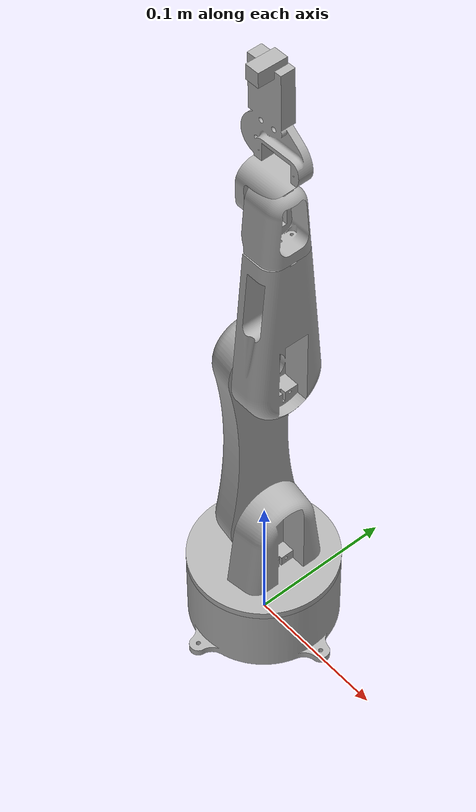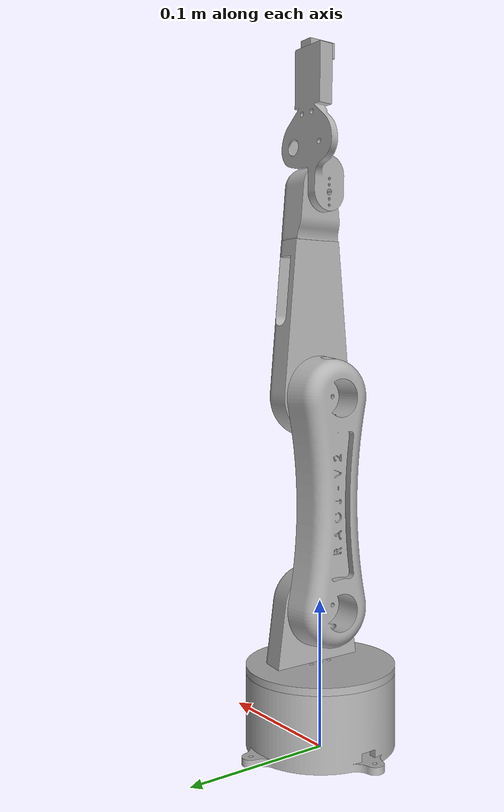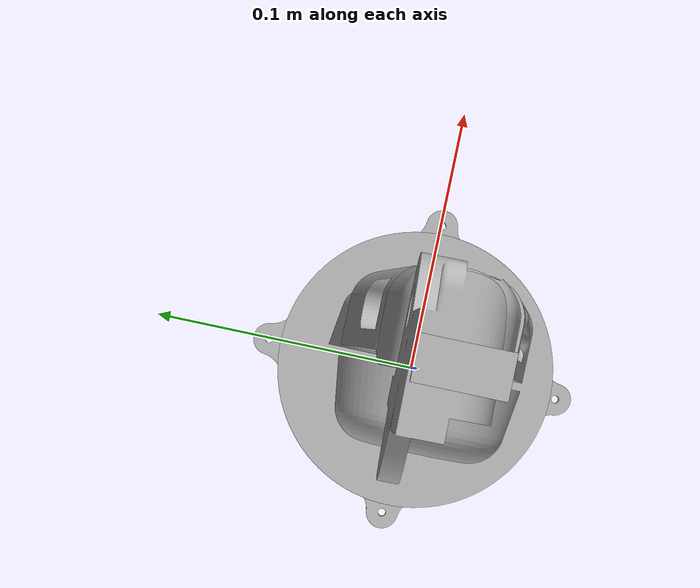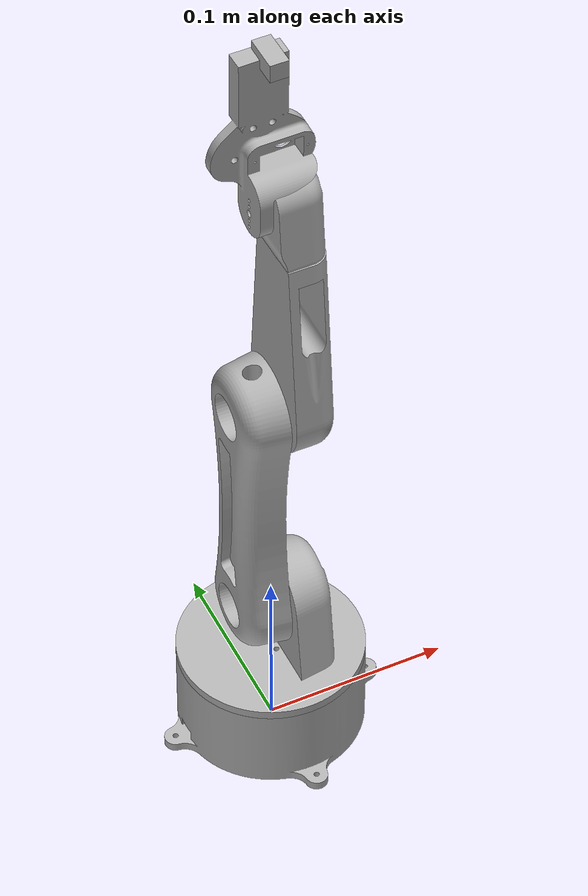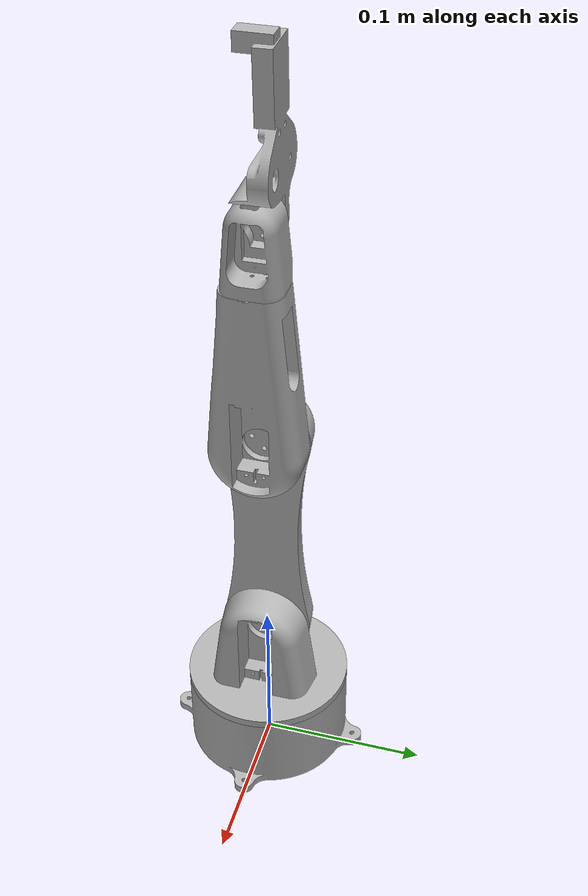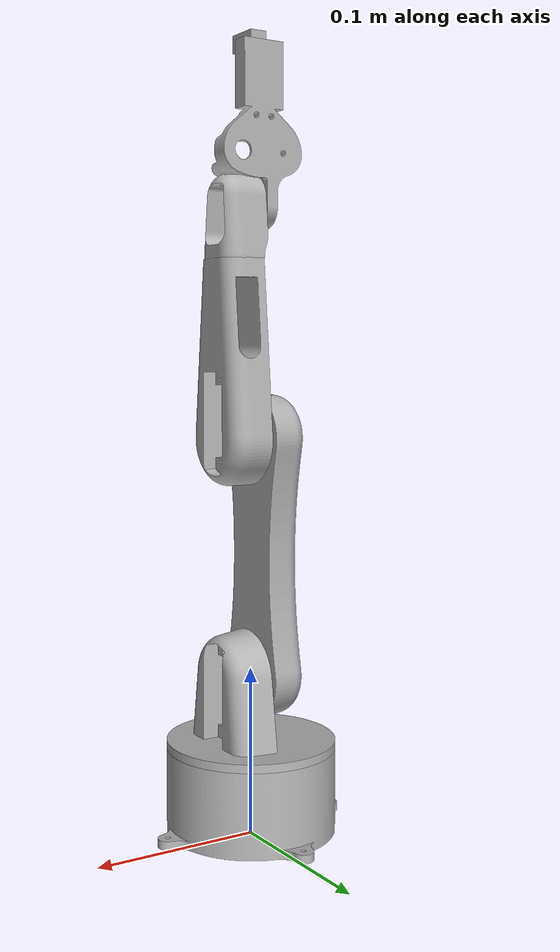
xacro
<?xml version="1.0"?>
<robot xmlns:xacro="http://www.ros.org/wiki/xacro" name="five_dof_robot_arm">
    <xacro:arg name="initial_positions_file" default="initial_positions.yaml" />

    <!-- Import five_dof_robot_arm urdf file -->
    <xacro:include filename="$(find five_dof_robot_arm_description)/urdf/five_dof_robot_arm.xacro" />

    <!-- Import control_xacro -->
    <xacro:include filename="five_dof_robot_arm.ros2_control.xacro" />

    <xacro:five_dof_robot_arm_ros2_control name="FakeSystem" initial_positions_file="$(arg initial_positions_file)"/>

</robot>

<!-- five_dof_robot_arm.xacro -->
<robot name="five_dof_robot_arm" xmlns:xacro="http://www.ros.org/wiki/xacro">

<xacro:include filename="$(find five_dof_robot_arm_description)/urdf/materials.xacro" />
<xacro:include filename="$(find five_dof_robot_arm_description)/urdf/five_dof_robot_arm.trans" />
<xacro:include filename="$(find five_dof_robot_arm_description)/urdf/five_dof_robot_arm.gazebo" />
<link name="base_link">
  <inertial>
    <origin xyz="0.00039944618987229174 -0.00022679502558283884 0.02557811537278175" rpy="0 0 0"/>
    <mass value="0.7233661769499682"/>
    <inertia ixx="0.000878" iyy="0.000958" izz="0.001522" ixy="0.0" iyz="-0.0" ixz="-1e-05"/>
  </inertial>
  <visual>
    <origin xyz="0 0 0" rpy="0 0 0"/>
    <geometry>
      <mesh filename="file://$(find five_dof_robot_arm_description)/meshes/base_link.stl" scale="0.001 0.001 0.001"/>
    </geometry>
    <material name="silver"/>
  </visual>
  <collision>
    <origin xyz="0 0 0" rpy="0 0 0"/>
    <geometry>
      <mesh filename="file://$(find five_dof_robot_arm_description)/meshes/base_link.stl" scale="0.001 0.001 0.001"/>
    </geometry>
  </collision>
</link>

<link name="rotate_link_1">
  <inertial>
    <origin xyz="0.0070578292154109806 -2.6117230101140867e-05 0.01942324197942242" rpy="0 0 0"/>
    <mass value="0.7043175850391777"/>
    <inertia ixx="0.000607" iyy="0.000525" izz="0.000555" ixy="-0.0" iyz="0.0" ixz="-6.3e-05"/>
  </inertial>
  <visual>
    <origin xyz="0.00049 0.000227 -0.053152" rpy="0 0 0"/>
    <geometry>
      <mesh filename="file://$(find five_dof_robot_arm_description)/meshes/rotate_link_1.stl" scale="0.001 0.001 0.001"/>
    </geometry>
    <material name="silver"/>
  </visual>
  <collision>
    <origin xyz="0.00049 0.000227 -0.053152" rpy="0 0 0"/>
    <geometry>
      <mesh filename="file://$(find five_dof_robot_arm_description)/meshes/rotate_link_1.stl" scale="0.001 0.001 0.001"/>
    </geometry>
  </collision>
</link>

<link name="link1_1">
  <inertial>
    <origin xyz="-0.008147667775626987 -0.0010986954924051464 0.07000434191025155" rpy="0 0 0"/>
    <mass value="1.0831804124518591"/>
    <inertia ixx="0.003389" iyy="0.003241" izz="0.000242" ixy="-1e-06" iyz="-5e-06" ixz="0.0"/>
  </inertial>
  <visual>
    <origin xyz="0.00265 -0.001031 -0.096702" rpy="0 0 0"/>
    <geometry>
      <mesh filename="file://$(find five_dof_robot_arm_description)/meshes/link1_1.stl" scale="0.001 0.001 0.001"/>
    </geometry>
    <material name="silver"/>
  </visual>
  <collision>
    <origin xyz="0.00265 -0.001031 -0.096702" rpy="0 0 0"/>
    <geometry>
      <mesh filename="file://$(find five_dof_robot_arm_description)/meshes/link1_1.stl" scale="0.001 0.001 0.001"/>
    </geometry>
  </collision>
</link>

<link name="end_effector">
  <inertial>
    <origin xyz="-0.0018 -0.13 0.3" rpy = "0 0 0"/>
    <mass value="0.1"/>
    <inertia ixx="0.001" iyy="0.001" izz="0.001" ixy="0.001" iyz="0.001" ixz="0.001"/>
  </inertial>
  <visual>
    <origin xyz="0.0003 -0.0002 -0.31" rpy="0 0 0"/>
    <geometry>
      <box size="0.01 0.02 0.01"/>
    </geometry>
    <material name="silver"/>
  </visual>
  <collision>
    <origin xyz="0.0003 -0.0002 -0.31" rpy = "0 0 0"/>
    <geometry>
      <box size="0.01 0.02 0.01"/>
    </geometry>
  </collision>
</link>

<link name="gripper_base_1">
  <inertial>
    <origin xyz="-0.0017949480748237856 -0.12033518453855054 0.2750017785923606" rpy="0 0 0"/>
    <mass value="0.1980883158048346"/>
    <inertia ixx="0.000163" iyy="0.000177" izz="2.5e-05" ixy="-0.0" iyz="-1e-05" ixz="-4e-06"/>
  </inertial>
  <visual>
    <origin xyz="-0.000226 -0.000703 -0.37182" rpy="0 0 0"/>
    <geometry>
      <mesh filename="file://$(find five_dof_robot_arm_description)/meshes/gripper_base_1.stl" scale="0.001 0.001 0.001"/>
    </geometry>
    <material name="silver"/>
  </visual>
  <collision>
    <origin xyz="-0.000226 -0.000703 -0.37182" rpy="0 0 0"/>
    <geometry>
      <mesh filename="file://$(find five_dof_robot_arm_description)/meshes/gripper_base_1.stl" scale="0.001 0.001 0.001"/>
    </geometry>
  </collision>
</link>

<link name="link3_1">
  <inertial>
    <origin xyz="-0.00423661183439995 0.0055092783070706235 0.019646810907749834" rpy="0 0 0"/>
    <mass value="0.16054869925024692"/>
    <inertia ixx="4.8e-05" iyy="4e-05" izz="2.3e-05" ixy="0.0" iyz="-0.0" ixz="3e-06"/>
  </inertial>
  <visual>
    <origin xyz="-0.013842 0.005101 -0.351704" rpy="0 0 0"/>
    <geometry>
      <mesh filename="file://$(find five_dof_robot_arm_description)/meshes/link3_1.stl" scale="0.001 0.001 0.001"/>
    </geometry>
    <material name="silver"/>
  </visual>
  <collision>
    <origin xyz="-0.013842 0.005101 -0.351704" rpy="0 0 0"/>
    <geometry>
      <mesh filename="file://$(find five_dof_robot_arm_description)/meshes/link3_1.stl" scale="0.001 0.001 0.001"/>
    </geometry>
  </collision>
</link>

<link name="link2_1">
  <inertial>
    <origin xyz="0.012972297674821031 -0.06088047213397274 0.045775837477048026" rpy="0 0 0"/>
    <mass value="0.6306313073359033"/>
    <inertia ixx="0.00092" iyy="0.00082" izz="0.000167" ixy="-0.0" iyz="-2e-06" ixz="-6e-06"/>
  </inertial>
  <visual>
    <origin xyz="0.000382 -0.000958 -0.234625" rpy="0 0 0"/>
    <geometry>
      <mesh filename="file://$(find five_dof_robot_arm_description)/meshes/link2_1.stl" scale="0.001 0.001 0.001"/>
    </geometry>
    <material name="silver"/>
  </visual>
  <collision>
    <origin xyz="0.000382 -0.060958 -0.234625" rpy="0 0 0"/>
    <geometry>
      <mesh filename="file://$(find five_dof_robot_arm_description)/meshes/link2_1.stl" scale="0.001 0.001 0.001"/>
    </geometry>
  </collision>
</link>

<joint name="Revolute 18" type="revolute">
  <origin xyz="-0.00049 -0.000227 0.053152" rpy="0 0 0"/>
  <parent link="base_link"/>
  <child link="rotate_link_1"/>
  <axis xyz="0.0 -0.0 1.0"/>
  <limit upper="6.283185" lower="0.0" effort="100" velocity="100"/>
</joint>

<joint name="Revolute 19" type="revolute">
  <origin xyz="-0.00216 0.001258 0.04355" rpy="0 0 0"/>
  <parent link="rotate_link_1"/>
  <child link="link1_1"/>
  <axis xyz="0.999993 -0.003728 -0.0"/>
  <limit upper="1.570796" lower="-1.570796" effort="100" velocity="100"/>
</joint>

<joint name="Revolute 21" type="revolute">
  <origin xyz="-0.013616 0.005804 0.020116" rpy="0 0 0"/>
  <parent link="link3_1"/>
  <child link="gripper_base_1"/>
  <axis xyz="0.999892 0.014705 -7e-06"/>
  <limit upper="1.570796" lower="-1.570796" effort="100" velocity="100"/>
</joint>

<joint name="Revolute 34" type="revolute">
  <origin xyz="0.014224 -0.006059 0.117079" rpy="0 0 0"/>
  <parent link="link2_1"/>
  <child link="link3_1"/>
  <axis xyz="1e-06 0.000375 1.0"/>
  <limit upper="6.283185" lower="0.0" effort="100" velocity="100"/>
</joint>

<joint name="Revolute 35" type="revolute">
  <origin xyz="0.002268 -0.000073 0.137923" rpy="0 0 0"/>
  <parent link="link1_1"/>
  <child link="link2_1"/>
  <axis xyz="0.999993 -0.003728 -0.0"/>
  <limit upper="1.570796" lower="-1.570796" effort="100" velocity="100"/>
</joint>

<joint name="end_effector_joint" type="fixed">
  <origin xyz="0.001 -0.0001 0.40" rpy="0 0 0"/>
  <parent link="gripper_base_1"/>
  <child link="end_effector"/>
</joint>

</robot>

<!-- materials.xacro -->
<robot name="five_dof_robot_arm" xmlns:xacro="http://www.ros.org/wiki/xacro" >

<material name="silver">
  <color rgba="0.700 0.700 0.700 1.000"/>
</material>

</robot>

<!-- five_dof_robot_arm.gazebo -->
<robot name="five_dof_robot_arm" xmlns:xacro="http://www.ros.org/wiki/xacro" >

<xacro:property name="body_color" value="Gazebo/Silver" />

<gazebo>
  <plugin name="control" filename="libgazebo_ros_control.so"/>
</gazebo>
<gazebo reference="base_link">
  <material>${body_color}</material>
  <mu1>0.2</mu1>
  <mu2>0.2</mu2>
  <self_collide>true</self_collide>
  <gravity>true</gravity>
</gazebo>

<gazebo reference="rotate_link_1">
  <material>${body_color}</material>
  <mu1>0.2</mu1>
  <mu2>0.2</mu2>
  <self_collide>true</self_collide>
</gazebo>

<gazebo reference="link1_1">
  <material>${body_color}</material>
  <mu1>0.2</mu1>
  <mu2>0.2</mu2>
  <self_collide>true</self_collide>
</gazebo>

<gazebo reference="gripper_base_1">
  <material>${body_color}</material>
  <mu1>0.2</mu1>
  <mu2>0.2</mu2>
  <self_collide>true</self_collide>
</gazebo>

<gazebo reference="link3_1">
  <material>${body_color}</material>
  <mu1>0.2</mu1>
  <mu2>0.2</mu2>
  <self_collide>true</self_collide>
</gazebo>

<gazebo reference="link2_1">
  <material>${body_color}</material>
  <mu1>0.2</mu1>
  <mu2>0.2</mu2>
  <self_collide>true</self_collide>
</gazebo>

</robot>
